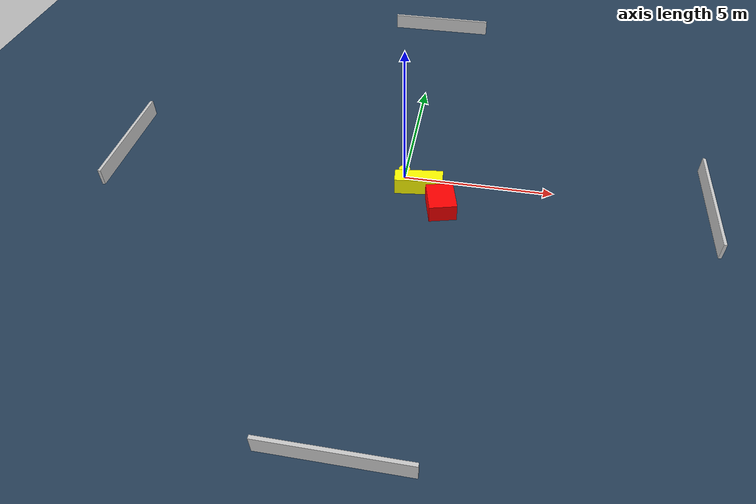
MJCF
<?xml version="1.0" ?>
<mujoco model="generated_environment">
  <option timestep="0.01" integrator="RK4" cone="elliptic"/>
  <default>
    <geom density="1"/>
  </default>
  <asset>
    <texture builtin="gradient" height="3072" name="skybox" rgb1="0.3 0.5 0.7" rgb2="0 0 0" type="skybox" width="512"/>
    <texture builtin="checker" height="300" name="groundplane" rgb1="0.2 0.3 0.4" rgb2="0.1 0.2 0.3" type="2d" width="300"/>
    <material name="groundplane" reflectance="0.2" texrepeat="5 5" texture="groundplane"/>
  </asset>
  <worldbody>
    <light dir="0 0 -1" directional="true" pos="0 0 1.5"/>
    <geom condim="3" friction="0.5 0.005 0.001" material="groundplane" name="floor" pos="0 0 0" size="0 0 0.05" type="plane"/>
    <body name="walls">
      <geom name="wall_1" condim="4" pos="-10.0 0.0 0.3" rgba="0.800000011920929 0.800000011920929 0.800000011920929 1.0" size="0.05 2.0 0.3" type="box"/>
      <geom name="wall_2" condim="4" pos="10.0 0.0 0.3" rgba="0.800000011920929 0.800000011920929 0.800000011920929 1.0" size="0.05 2.0 0.3" type="box"/>
      <geom name="wall_3" condim="4" pos="0.0 -10.0 0.3" rgba="0.800000011920929 0.800000011920929 0.800000011920929 1.0" size="2.0 0.05 0.3" type="box"/>
      <geom name="wall_4" condim="4" pos="0.0 10.0 0.3" rgba="0.800000011920929 0.800000011920929 0.800000011920929 1.0" size="2.0 0.05 0.3" type="box"/>
    </body>
    <body name="robot">
      <joint name="joint_x" type="slide" pos="0 0 0" axis="1 0 0"/>
      <joint name="joint_y" type="slide" pos="0 0 0" axis="0 1 0"/>
      <geom name="robot" type="cylinder" pos="0.0 0.0 0.2" size="0.2 0.2 0.0" mass="5.0" friction="1.0 0.005 0.0001" condim="4" rgba="1.0 1.0 0.0 1.0"/>
    </body>
    <body name="obstacle_1_movable">
      <geom name="obstacle_1_movable" condim="4" pos="0.5519214033667876 -0.46369302439125304 0.3" euler="0 0 96.4750437095292" friction="0.0 0.005 0.001" rgba="1.0 1.0 0.0 1.0" size="0.2631183966485049 0.7981209483066607 0.3" type="box" mass="0.1"/>
      <joint type="free"/>
    </body>
    <body name="obstacle_2_static">
      <geom name="obstacle_2_static" condim="4" pos="1.4017942056749182 -1.2839526489304836 0.3" euler="0 0 194.129262632929" friction="0.0 0.005 0.001" rgba="1.0 0.0 0.0 1.0" size="0.447763944143973 0.5398910359283523 0.3" type="box"/>
    </body>
  </worldbody>
  <actuator>
    <motor name="actuator_x" joint="joint_x" gear="1" ctrlrange="-1 1"/>
    <motor name="actuator_y" joint="joint_y" gear="1" ctrlrange="-1 1"/>
  </actuator>
</mujoco>
